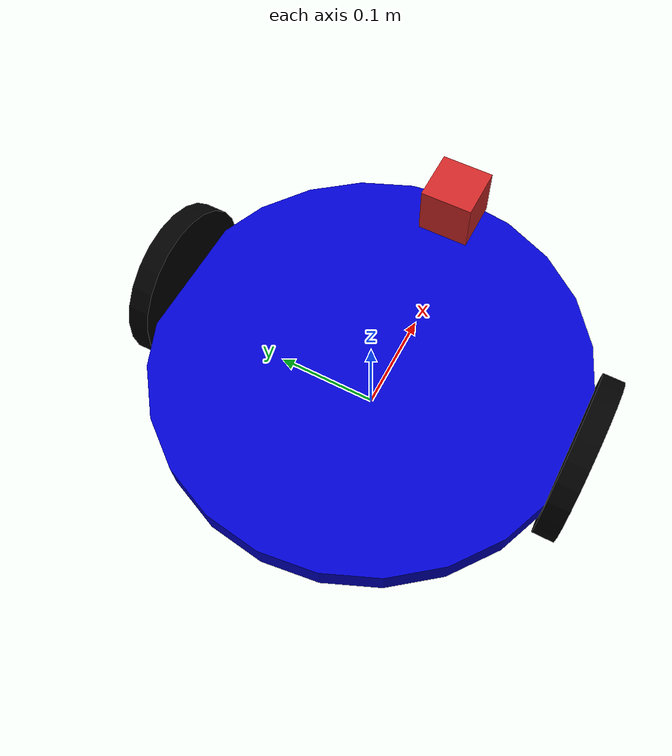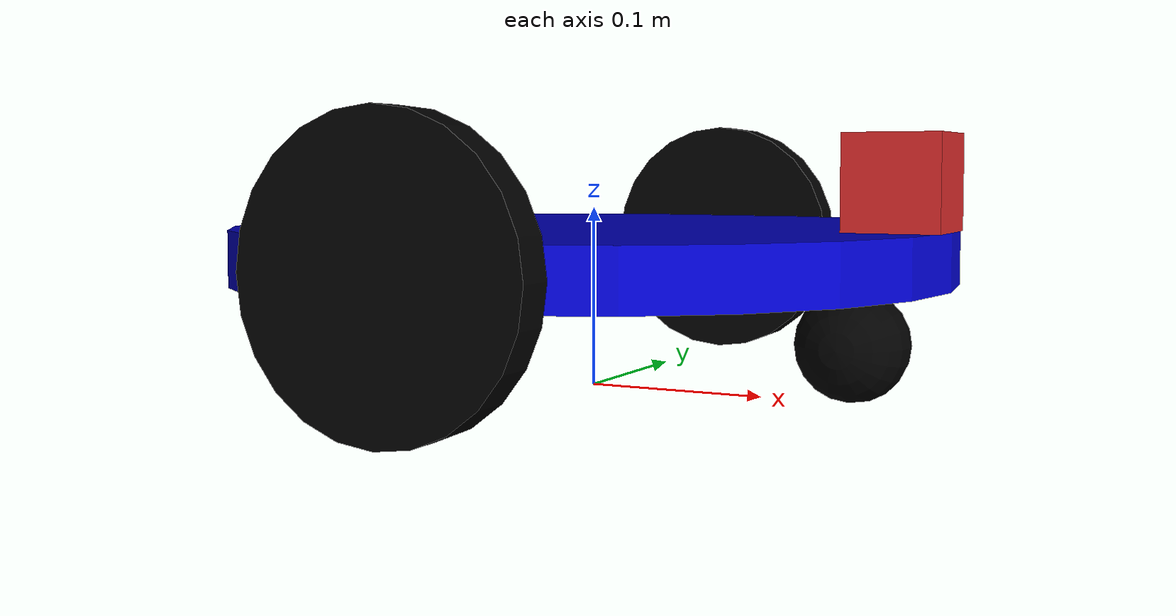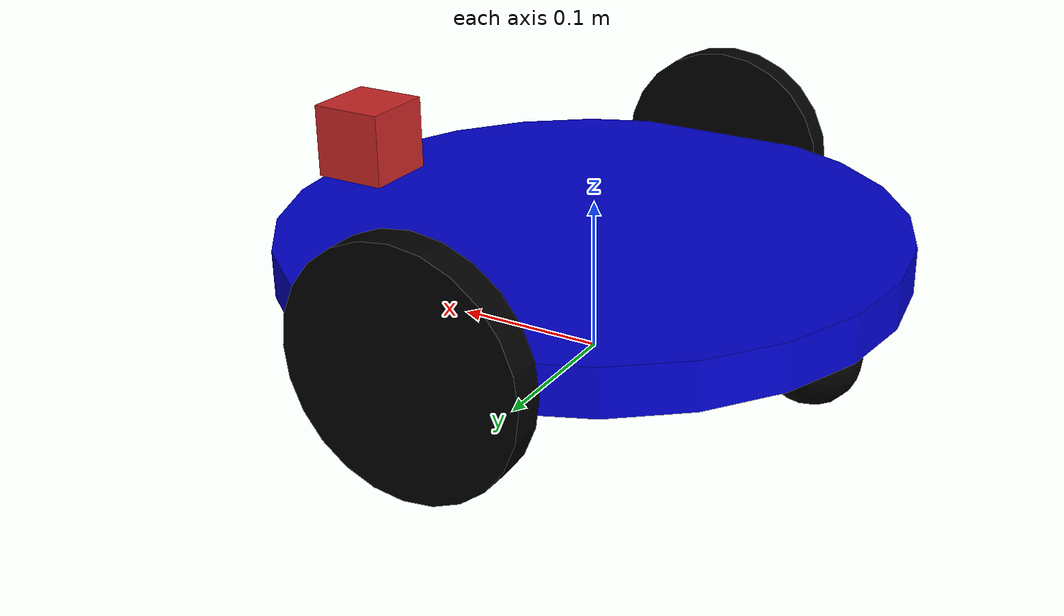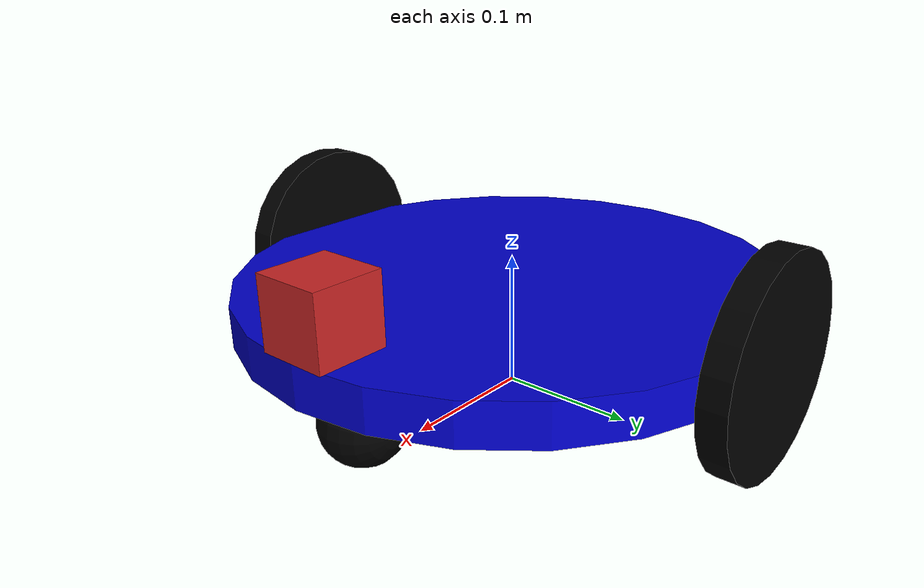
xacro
<?xml version="1.0"?>
<robot name="diff_robot" xmlns:xacro="http://www.ros.org/wiki/xacro"> <!--Ak nebude fungovat skusit tu vlozit tu xmls stranku -->

<material name="Black">
    <color rgba="0.0 0.0 0.0 1.0"/>
</material>

<material name="Blue">
    <color rgba="0.0 0.0 0.8 1.0"/>
</material>

<material name="Red">
    <color rgba="0.8 0.0 0.0 1.0"/>
</material>

<!-- urobit properties aj na jointy-->
<xacro:property name="base_radius" value="0.2"/>
<xacro:property name="base_length" value="0.03"/>
<xacro:property name="base_mass"   value="5"/>

<xacro:property name="PI_2"         value="1.57079632679"/>
<xacro:property name="wheel_radius" value="0.075"/>
<xacro:property name="wheel_length" value="0.02"/>
<xacro:property name="wheel_mass"   value="1.5"/>

<xacro:property name="caster_radius" value="0.03"/>
<xacro:property name="caster_mass"   value="0.2"/>

<xacro:property name="sensor_size" value="0.05"/> <!-- pozriet rozmery-->

<xacro:property name="camera_size" value="0.05"/> <!-- pozriet rozmery-->

<xacro:macro name="cylinder_inertia"        params="m r h">
    <inertia  ixx="${m*(3*r*r+h*h)/12}" ixy = "0" ixz = "0"
                  iyy="${m*(3*r*r+h*h)/12}" iyz = "0"
                  izz="${m*r*r/2}" />
</xacro:macro>
<xacro:macro name="sphere_inertia"   params="m r">
    <inertia  ixx="${2*m*r*r/5}" ixy = "0" ixz = "0"
                  iyy="${2*m*r*r/5}" iyz = "0"
                  izz="${2*m*r*r/5}" />
</xacro:macro>

<!-- BASE FOOTPRINT-->
 <link name="base_footprint">
 <visual>
 <origin rpy="0 0 0" xyz="0 0 0"/>
 <geometry>
 <box size="0.001 0.001 0.001"/>
 </geometry>
 </visual>
 </link>

<joint name="base_footprint_joint" type="fixed">
 <origin rpy="0 0 0" xyz="0 0 ${wheel_radius}"/>
 <parent link="base_footprint"/>
 <child link="base_link"/>
 </joint>

  <gazebo reference="base_footprint">
    <turnGravityOff>false</turnGravityOff>
  </gazebo>

<!-- BASE-->
<link name="base_link">
    <visual>
        <geometry>
            <cylinder length="${base_length}" radius="${base_radius}"/>
        </geometry>

        <origin rpy="0 0 0" xyz="0 0 0"/>
        <material name="Blue"/>
    </visual>
    <collision>
        <geometry>
            <cylinder length="${base_length}" radius="${base_radius}"/>
        </geometry>
        <origin rpy="0 0 0" xyz="0 0 0"/>
    </collision>
    <inertial>
        <mass value="${base_mass}"/>
        <origin xyz="0 0 0"/>
            <!--3x3 rotacna zotrvacna matica, Ak je symetricka staci 6 elementov -->
        <cylinder_inertia  m="${base_mass}" r="${base_radius}" h="${base_length}" />
    </inertial>
</link>
<gazebo reference="base_link">
    <turnGravityOff>false</turnGravityOff>
    <material>Gazebo/Blue</material>

</gazebo>

<!-- LEFT-->
<link name="left_wheel_link">
    <visual>
        <geometry>
            <cylinder length="${wheel_length}" radius="${wheel_radius}"/>
        </geometry>

        <origin rpy="${PI_2} 0 0" xyz="0 0 0"/> <!-- 1.5 otoci koleso aby "stalo", xyz posuva na poziciu -->
        <material name="Black"/>
    </visual>
    <collision>
        <geometry>
            <cylinder length="${wheel_length}" radius="${wheel_radius}"/>
        </geometry>
        <origin rpy="${PI_2} 0 0" xyz="0 0 0"/>
    </collision>
    <inertial>
        <mass value="${wheel_mass}"/>  <!-- preco take tazke???-->
        <origin xyz="0 0 0"/>
            <!--3x3 rotacna zotrvacna matica, Ak je symetricka staci 6 elementov -->
        <cylinder_inertia  m="${wheel_mass}" r="${wheel_radius}" h="${wheel_length}" />
    </inertial>
</link>
<gazebo reference="left_wheel_link">
    <turnGravityOff>false</turnGravityOff>
    <material>Gazebo/Black</material>
    <mu1 value="1.0"/>
    <mu2 value="1.0"/>
    <kp value="10000000.0"/>
    <kd value="1.0"/>
    <fdir1 value="1 0 0"/>

</gazebo>

<joint name="left_wheel_joint" type="continuous">  <!--CONTINUOUS- aby sa neobmedzene otacal -->
    <parent link="base_link"/>
    <child link="left_wheel_link"/>
    <origin rpy="0 0 0" xyz="0 -0.2 0"/>                              <!-- Ake hodnoty?-->
    <axis xyz="0 1 0" rpy="0  0"/>                               <!-- Povoli rotaciu okolo osi X-->
    <limit effort="100" velocity="100" />  <!-- pre Joint State PUblisher, HODNOTY??? -->
    <dynamics damping="0.0" friction="0.0"/>     <!-- damping- tlmenie  friction- trenie-->
</joint>

<!-- RIGHT -->
<link name="right_wheel_link">
    <visual>
        <geometry>
            <cylinder length="${wheel_length}" radius="${wheel_radius}"/>
        </geometry>

        <origin rpy="${PI_2} 0 0" xyz="0 0 0"/>
        <material name="Black"/>
    </visual>
    <collision>
        <geometry>
            <cylinder length="${wheel_length}" radius="${wheel_radius}"/>
        </geometry>
        <origin rpy="${PI_2} 0 0" xyz="0 0 0"/>
    </collision>
    <inertial>
        <mass value="${wheel_mass}"/>  <!-- preco take tazke???-->
        <origin xyz="0 0 0"/>
            <!--3x3 rotacna zotrvacna matica, Ak je symetricka staci 6 elementov -->
        <cylinder_inertia  m="${wheel_mass}" r="${wheel_radius}" h="${wheel_length}" />
    </inertial>
</link>
<gazebo reference="right_wheel_link">
    <turnGravityOff>false</turnGravityOff>
    <material>Gazebo/Black</material>
    <mu1 value="1.0"/>
    <mu2 value="1.0"/>
    <kp value="10000000.0"/>
    <kd value="1.0"/>
    <fdir1 value="1 0 0"/>

</gazebo>

<joint name="right_wheel_joint" type="continuous">
    <parent link="base_link"/>
    <child link="right_wheel_link"/>
    <origin rpy="0 0 0" xyz="0 0.2 0"/>
    <axis  xyz="0 1 0" rpy="0  0"/>
        <limit effort="100" velocity="100" />
    <dynamics damping="0.0" friction="0.0"/>
</joint>

<!-- FRONT CASTER-->
<link name="front_caster_link">
    <visual>
        <geometry>
            <sphere radius="${caster_radius}"/>
        </geometry>
        <origin rpy="${-PI_2} 3.1416 0" xyz="0 0 0"/> <!--preco sa pri guly nastavuje rpy-->
        <material name="Black"/>
    </visual>
    <collision>
        <geometry>
            <sphere radius="${caster_radius}"/>
        </geometry>
        <origin rpy="${-PI_2} 3.1416 0" xyz="0 0 0"/>
    </collision>
    <inertial>
        <mass value="${caster_mass}"/>
        <origin xyz="0 0 0"/>
        <!-- Pocitam zotrvacnost pre PLNU gulu-->
        <sphere_inertia  m="${caster_mass}" r="${caster_radius}" />
    </inertial>
</link>
<gazebo reference="front_caster_link">
    <turnGravityOff>false</turnGravityOff>
    <material>Gazebo/Black</material>
</gazebo>

<joint name="front_caster_joint" type="fixed">
    <parent link="base_link"/>
    <child link="front_caster_link"/>
    <origin rpy="0 0 0" xyz="0.15 0 -0.044"  />   <!-- preco je v knihe rpy= -1.57 0 0 ?-->
</joint>

<!-- BACK CASTER-->

<link name="back_caster_link">
    <visual>
        <geometry>
            <sphere radius="${caster_radius}"/>
        </geometry>
        <origin rpy="${-PI_2} 3.1416 0" xyz="0 0 0"/>
        <material name="Black"/>
    </visual>
    <collision>
        <geometry>
            <sphere radius="${caster_radius}"/>
        </geometry>
        <origin rpy="${-PI_2} 3.1416 0" xyz="0 0 0"/>
    </collision>
    <inertial>
        <mass value="${caster_mass}"/>
        <origin xyz="0 0 0"/>
        <sphere_inertia  m="${caster_mass}" r="${caster_radius}" />
    </inertial>

</link>
<gazebo reference="back_caster_link">
    <turnGravityOff>false</turnGravityOff>
    <material>Gazebo/Black</material>
</gazebo>

<joint name="back_caster_joint" type="fixed">
    <parent link="base_link"/>
    <child link="back_caster_link"/>
    <origin rpy="0 0 0" xyz="-0.15 0 -0.044"  />   <!--xyz="-0.15 0 -0.045" aj vo Front-->
</joint>

  <!-- hokuyo pozriet vlastnosti-->

<link name="hokuyo_link">
    <visual>
        <geometry>
            <box size="${sensor_size} ${sensor_size} ${sensor_size}"/>
        </geometry>
        <origin xyz="0 0 0" rpy="0 0 0" />
        <maretial name="Red"/>
    </visual>
    <collision>
        <geometry>
            <box size="${sensor_size} ${sensor_size} ${sensor_size}"/>
        </geometry>
        <origin xyz="0 0 0" rpy="0 0 0" />
    </collision>
    <material name="Red"/>

</link>

<joint name="hokuyo_joint" type="fixed">
    <parent link="base_link"/>
    <child link="hokuyo_link" />
        <origin xyz="${base_radius-sensor_size/2} 0 ${base_length/2+sensor_size/2}" rpy="0 0 0" />
</joint>

<gazebo reference="hokuyo_link">
    <sensor type="ray" name="head_hokuyo_sensor">
       <pose>0 0 0 0 0 0</pose>
      <visualize>false</visualize>
      <update_rate>40</update_rate>
      <ray>
        <scan>
          <horizontal>
            <samples>720</samples>
            <resolution>1</resolution>
            <min_angle>0</min_angle>
            <max_angle>3.141592654</max_angle>
          </horizontal>
        </scan>
        <range>
          <min>0.10</min>
          <max>10.0</max>
          <resolution>0.001</resolution>
        </range>

      </ray>
      <plugin name="gazebo_ros_head_hokuyo_controller" filename="libgazebo_ros_laser.so">
        <topicName>/scan</topicName>
        <frameName>hokuyo_link</frameName>
      </plugin>
    </sensor>
    <material>Gazebo/Red</material>
</gazebo>

  <gazebo>
    <plugin filename="libgazebo_ros_control.so" name="gazebo_ros_control">
      <robotSimType>gazebo_ros_control/DefaultRobotHWSim</robotSimType>
    </plugin>
  </gazebo>

  <transmission name="left_tran">
      <type>transmission_interface/SimpleTransmission</type>
      <joint name="left_wheel_joint">
        <hardwareInterface>hardware_interface/VelocityJointInterface</hardwareInterface>
      </joint>
      <actuator name="left_wheel_motor">
        <hardwareInterface>hardware_interface/VelocityJointInterface</hardwareInterface>
      </actuator>
  </transmission>

  <transmission name="right_tran">
      <type>transmission_interface/SimpleTransmission</type>
      <joint name="right_wheel_joint">
        <hardwareInterface>hardware_interface/VelocityJointInterface</hardwareInterface>
      </joint>
      <actuator name="right_wheel_motor">
        <hardwareInterface>hardware_interface/VelocityJointInterface</hardwareInterface>
      </actuator>
  </transmission>

</robot>
